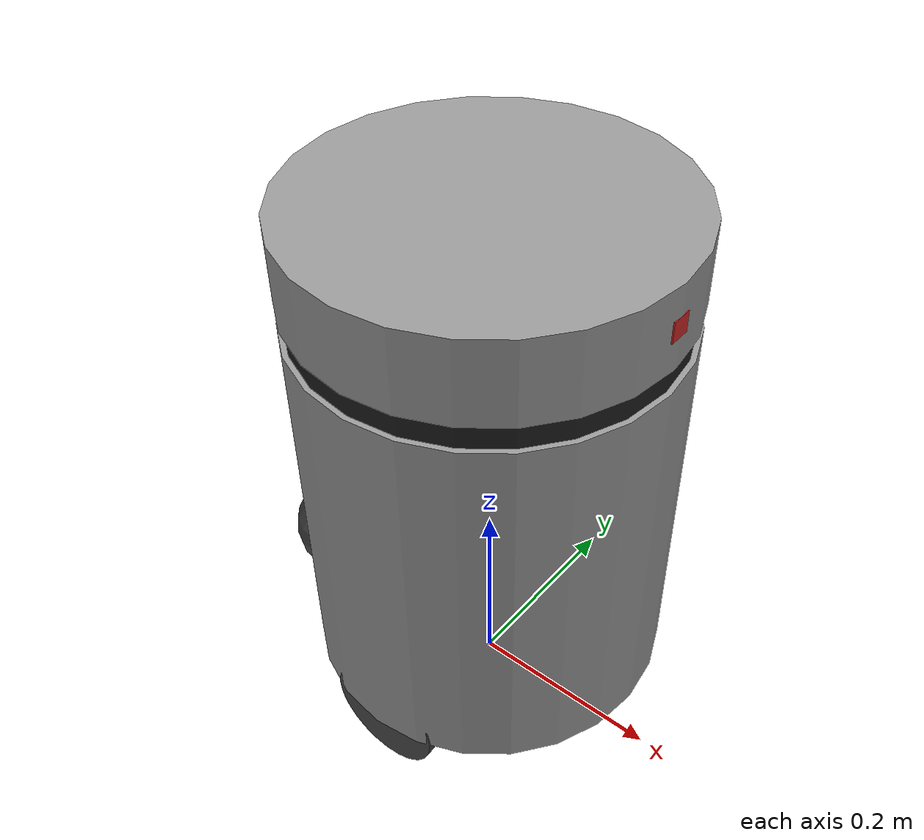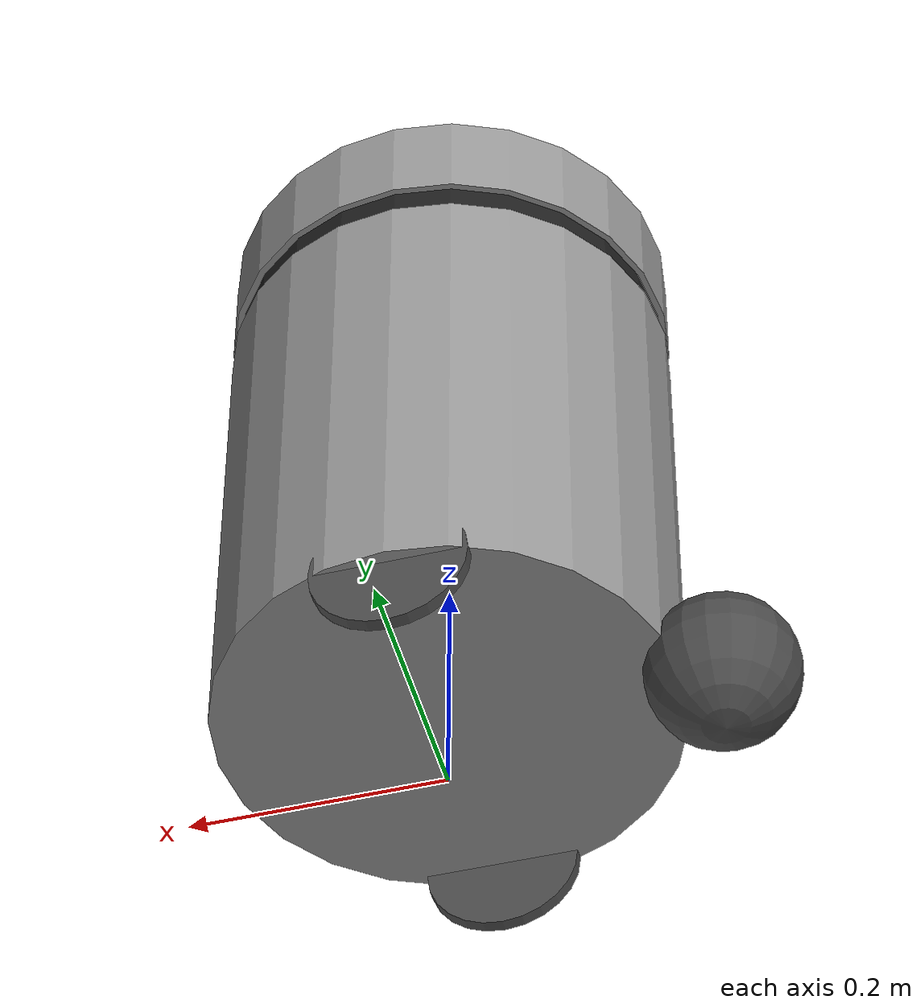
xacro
<?xml version="1.0"?>
<robot name="ocare" xmlns:xacro="http://www.ros.org/wiki/xacro">

  <!-- Included URDF/XACRO Files -->
  <xacro:include filename="$(find labrob_description)/urdf/materials.urdf.xacro" />
  <xacro:include filename="$(find labrob_description)/urdf/ocare_wheel.urdf.xacro" />

  <!-- PROPERTY LIST -->
  <!--All units in m-kg-s-radians unit system -->
  <property name="M_PI" value="3.1415926535897931" />

  <!-- Main Body-base -->
  <property name="base_height" value="0.40" />
  <property name="base_radius" value="0.18" />
  <property name="base_mass" value="4" /> <!-- in kg-->

  <!-- Main Body-base -->
  <property name="neck_link_height" value="0.025" />
  <property name="neck_link_radius" value="0.175" />
  <property name="neck_link_mass" value="0.1" /> <!-- in kg-->

  <!-- Main Body-base -->
  <property name="head_link_height" value="0.08" />
  <property name="head_link_radius" value="0.18" />
  <property name="head_link_mass" value="0.1" /> <!-- in kg-->

  <!--Left Arm-base-->
  <property name="left_arm_base_mass" value="0.20" />
  <property name="left_arm_base_x_offset" value="0.0" />
  <property name="left_arm_base_y_offset" value="0.0" />
  <property name="left_arm_base_z_offset" value="0.1" />
  <property name="left_arm_base_x_size" value="0.05" />
  <property name="left_arm_base_y_size" value="0.02" />
  <property name="left_arm_base_z_size" value="0.10" />
  <property name="base_x_origin_to_left_arm_base" value="0.0" />
  <property name="base_y_origin_to_left_arm_base" value="0.05" />
  <property name="base_z_origin_to_left_arm_base" value="0.0" />

    <!--Left Arm1-base-->
  <property name="left_arm_1_link_mass" value="0.01" />
  <property name="left_arm_1_link_x_offset" value="0.0" />
  <property name="left_arm_1_link_y_offset" value="0.176" />
  <property name="left_arm_1_link_z_offset" value="0.0" />
  <property name="left_arm_1_link_x_size" value="0.05" />
  <property name="left_arm_1_link_y_size" value="0.176" />
  <property name="left_arm_1_link_z_size" value="0.02" />

    <!--Left Arm2-base-->
  <property name="left_arm_2_link_mass" value="0.01" />
  <property name="left_arm_2_link_x_offset" value="-0.078" />
  <property name="left_arm_2_link_y_offset" value="0.03" />
  <property name="left_arm_2_link_z_offset" value="-0.01" />
  <property name="left_arm_2_link_x_size" value="0.078" />
  <property name="left_arm_2_link_y_size" value="0.06" />
  <property name="left_arm_2_link_z_size" value="0.02" />

    <!--Right Arm-base-->
  <property name="right_arm_base_mass" value="0.20" />
  <property name="right_arm_base_x_offset" value="0.0" />
  <property name="right_arm_base_y_offset" value="0.0" />
  <property name="right_arm_base_z_offset" value="-0.1" />
  <property name="right_arm_base_x_size" value="0.05" />
  <property name="right_arm_base_y_size" value="0.02" />
  <property name="right_arm_base_z_size" value="0.10" />
  <property name="base_x_origin_to_right_arm_base" value="0.0" />
  <property name="base_y_origin_to_right_arm_base" value="-0.05" />
  <property name="base_z_origin_to_right_arm_base" value="0.0" />

    <!--Right Arm1-base-->
  <property name="right_arm_1_link_mass" value="0.01" />
  <property name="right_arm_1_link_x_offset" value="0.0" />
  <property name="right_arm_1_link_y_offset" value="0.176" />
  <property name="right_arm_1_link_z_offset" value="0.0" />
  <property name="right_arm_1_link_x_size" value="0.05" />
  <property name="right_arm_1_link_y_size" value="0.176" />
  <property name="right_arm_1_link_z_size" value="0.02" />

    <!--Right Arm2-base-->
  <property name="right_arm_2_link_mass" value="0.01" />
  <property name="right_arm_2_link_x_offset" value="-0.078" />
  <property name="right_arm_2_link_y_offset" value="0.03" />
  <property name="right_arm_2_link_z_offset" value="0.01" />
  <property name="right_arm_2_link_x_size" value="0.078" />
  <property name="right_arm_2_link_y_size" value="0.06" />
  <property name="right_arm_2_link_z_size" value="0.02" />

	<!--Camera Link-->
  <property name="camera_link_x_size" value="0.02" />
  <property name="camera_link_y_size" value="0.02" />
   <property name="camera_link_z_size" value="0.02" />

  <!--Inertial macros for the box and cylinder. Units are kg*m^2-->
  <macro name="box_inertia" params="m x y z">
    <inertia  ixx="${m*(y*y+z*z)/12}" ixy = "0" ixz = "0"
              iyy="${m*(x*x+z*z)/12}" iyz = "0"
              izz="${m*(x*x+z*z)/12}" />
  </macro>

  <!-- BASE-FOOTPRINT -->
  <!-- base_footprint is a fictitious link(frame) that is on the ground right below base_link origin -->
  <link name="base_footprint">
    <inertial>
      <mass value="0.0001" />
      <origin xyz="0 0 0" />
      <inertia ixx="0.0001" ixy="0.0" ixz="0.0"
          iyy="0.0001" iyz="0.0"
          izz="0.0001" />
    </inertial>
    <visual>
        <origin xyz="0 0 0" rpy="0 0 0" />
        <geometry>
            <box size="0.001 0.001 0.001" />
        </geometry>
    </visual>
  </link>

  <joint name="base_footprint_joint" type="fixed">
	<origin xyz="0 0 ${wheel_radius + base_z_origin_to_wheel_origin}" rpy="0 0 0" />
    <parent link="base_footprint"/>
    <child link="base_link" />
  </joint>

  <gazebo reference="base_footprint">
    <turnGravityOff>false</turnGravityOff>
  </gazebo>

  <!-- BASE-LINK -->
  <!--Actual body/chassis of the robot-->
  <link name="base_link">
    <inertial>
      <mass value="${base_mass}" />
      <origin xyz="0 0 0" />
      <!--The 3x3 rotational inertia matrix. -->
      <cylinder_inertia  m="${base_mass}" r="${base_radius}" h="${base_height}" />
    </inertial>

    <visual name="visual">
      <origin xyz="0 0 -0.14" rpy="0 0 0 " />
      <geometry>
        <cylinder length="${base_height}" radius="${base_radius}" />
      </geometry>
      <material name="Gray" />
    </visual>

    <collision>
      <origin xyz="0 0 -0.14" rpy="0 0 0 " />
      <geometry>
        <cylinder length="${base_height}" radius="${base_radius}" />
      </geometry>
    </collision>
  </link>
  <gazebo reference="base_link">
    <material>Gazebo/Yellow</material>
    <turnGravityOff>false</turnGravityOff>
  </gazebo>

   <!-- NECK-LINK -->
  <!--Actual body/chassis of the robot-->
  <link name="neck_link">
    <inertial>
      <mass value="${neck_link_mass}" />
      <origin xyz="0 0 0" />
      <!--The 3x3 rotational inertia matrix. -->
      <cylinder_inertia  m="${neck_link_mass}" r="${neck_link_radius}" h="${neck_link_height}" />
    </inertial>

    <visual name="visual">
      <origin xyz="0 0 0" rpy="0 0 0 " />
      <geometry>
        <cylinder length="${neck_link_height}" radius="${neck_link_radius}" />
      </geometry>
      <material name="Black" />
    </visual>

  </link>
  <gazebo reference="neck_link">
    <material>Gazebo/Black</material>
    <turnGravityOff>false</turnGravityOff>
  </gazebo>
  <joint name="neck_link_joint" type="fixed">
	<parent link="base_link"/>
	<child link="neck_link"/>
	<origin xyz="0 0 0.0725" rpy="0 0 0" />
  </joint>

  <!-- HEAD-LINK -->
  <!--Actual body/chassis of the robot-->
  <link name="head_link">
    <inertial>
      <mass value="${head_link_mass}" />
      <origin xyz="0 0 0" />
      <!--The 3x3 rotational inertia matrix. -->
      <cylinder_inertia  m="${head_link_mass}" r="${head_link_radius}" h="${head_link_height}" />
    </inertial>

    <visual name="visual">
      <origin xyz="0 0 0" rpy="0 0 0 " />
      <geometry>
        <cylinder length="${head_link_height}" radius="${head_link_radius}" />
      </geometry>
      <material name="Gray" />
    </visual>

    <collision>
      <origin xyz="0 0 0" rpy="0 0 0 " />
      <geometry>
        <cylinder length="${head_link_height}" radius="${head_link_radius}" />
      </geometry>
    </collision>
  </link>
  <gazebo reference="head_link">
    <material>Gazebo/Gray</material>
    <turnGravityOff>false</turnGravityOff>
  </gazebo>
  <joint name="head_link_joint" type="fixed">
	<parent link="neck_link"/>
	<child link="head_link"/>
	<origin xyz="0 0 0.0525" rpy="0 0 0" />
  </joint>

  <!--LEFT-ARM-BASE-->
  <link name="left_arm_base_link">
    <inertial>
      <mass value="${left_arm_base_mass}" />
      <origin
					xyz=
				"${left_arm_base_x_offset} ${left_arm_base_y_offset} ${left_arm_base_z_offset-left_arm_base_z_size/2}"
					rpy=
				"0 0 0 " />
      <!--The 3x3 rotational inertia matrix. -->
       <box_inertia m="${left_arm_base_mass}" x="${left_arm_base_x_size}" y="${left_arm_base_y_size}" z="${left_arm_base_z_size}" />
    </inertial>

    <visual name="visual">
      <origin
					xyz=
				"${left_arm_base_x_offset} ${left_arm_base_y_offset} ${left_arm_base_z_offset-left_arm_base_z_size/2}"
					rpy=
				"0 0 0 " />
      <geometry>
        <box size="${left_arm_base_x_size} ${left_arm_base_y_size} ${left_arm_base_z_size}" />
      </geometry>

      <material name="Green" />
    </visual>

	<collision>
		<origin
					xyz=
				"${left_arm_base_x_offset-left_arm_base_x_size/2} ${left_arm_base_y_offset-left_arm_base_y_size/2} ${left_arm_base_z_offset-left_arm_base_z_size/2}"
					rpy=
				"0 0 0 " />
      <geometry>
        <box size="${left_arm_base_x_size} ${left_arm_base_y_size} ${left_arm_base_z_size}" />
      </geometry>
	</collision>

  </link>
  <gazebo reference="left_arm_base_link">
    <material>Gazebo/Grey</material>
    <turnGravityOff>false</turnGravityOff>
  </gazebo>
  <joint name="left_arm_base_link_joint" type="prismatic">
	<parent link="base_link"/>
	<child link="left_arm_base_link"/>
	<origin xyz="${base_x_origin_to_left_arm_base} ${base_y_origin_to_left_arm_base} ${base_z_origin_to_left_arm_base}" rpy="${-M_PI/2} 0 0" />
	<axis xyz="0 0 1"/>
	<limit effort="100" velocity="100" lower="0" upper="0.15" />
	<joint_properties damping="0.0" friction="0.0"/>
  </joint>
  <transmission name="left_arm_base_link_tran">
	<type>transmission_interface/SimpleTransmission</type>
	<joint name="left_arm_base_link_joint" >
		<hardwareInterface>PositionJointInterface</hardwareInterface>
	</joint>
	<actuator name="left_arm_base_link_joint_actu">
		<hardwareInterface>PositionJointInterface</hardwareInterface>
		<mechanicalReduction>1</mechanicalReduction>
	</actuator>
  </transmission>

   <!--LEFT-ARM1-LINK-->
  <link name="left_arm_1_link">
    <inertial>
      <mass value="${left_arm_1_link_mass}" />
      <origin
					xyz=
				"${left_arm_1_link_x_offset} ${left_arm_1_link_y_offset-left_arm_1_link_y_size/2} ${left_arm_1_link_z_offset}"
					rpy=
				"0 0 0 " />
      <!--The 3x3 rotational inertia matrix. -->
       <box_inertia m="${left_arm_1_link_mass}" x="${left_arm_1_link_x_size}" y="${left_arm_1_link_y_size}" z="${left_arm_1_link_z_size}" />
    </inertial>

    <visual name="visual">
      <origin
					xyz=
				"${left_arm_1_link_x_offset} ${left_arm_1_link_y_offset-left_arm_1_link_y_size/2} ${left_arm_1_link_z_offset}"
					rpy=
				"0 0 0 " />
      <geometry>
        <box size="${left_arm_1_link_x_size} ${left_arm_1_link_y_size} ${left_arm_1_link_z_size}" />
      </geometry>

      <material name="Green" />
    </visual>

	<collision>
      <origin
					xyz=
				"${left_arm_1_link_x_offset} ${left_arm_1_link_y_offset-left_arm_1_link_y_size/2} ${left_arm_1_link_z_offset}"
					rpy=
				"0 0 0 " />
      <geometry>
        <box size="${left_arm_1_link_x_size} ${left_arm_1_link_y_size} ${left_arm_1_link_z_size}" />
      </geometry>
	</collision>

  </link>
  <gazebo reference="left_arm_1_link">
    <material>Gazebo/Grey</material>
    <turnGravityOff>false</turnGravityOff>
  </gazebo>
  <joint name="left_arm_1_link_joint" type="revolute">
	<parent link="left_arm_base_link"/>
	<child link="left_arm_1_link"/>
	<origin xyz="${left_arm_base_x_offset} ${left_arm_base_y_offset} ${left_arm_base_z_offset}" rpy="0 0 0" />
	<axis xyz="0 0 1"/>
	<limit effort="5" velocity="1" lower="${-M_PI}" upper="0" />
	<joint_properties damping="1.0" friction="0.0"/>
  </joint>
  <transmission name="left_arm_1_link_tran">
  	<type>transmission_interface/SimpleTransmission</type>
	<joint name="left_arm_1_link_joint" >
		<hardwareInterface>PositionJointInterface</hardwareInterface>
	</joint>
	<actuator name="left_arm_1_link_joint_actu">
		<hardwareInterface>PositionJointInterface</hardwareInterface>
		<mechanicalReduction>1</mechanicalReduction>
	</actuator>
  </transmission>

     <!--LEFT-ARM2-LINK-->
  <link name="left_arm_2_link">
    <inertial>
      <mass value="${left_arm_2_link_mass}" />
      <origin
					xyz=
				"${left_arm_2_link_x_offset} ${left_arm_2_link_y_offset-left_arm_2_link_x_offset/2} ${left_arm_2_link_z_offset}"
					rpy=
				"0 0 0 " />
      <!--The 3x3 rotational inertia matrix. -->
       <box_inertia m="${left_arm_2_link_mass}" x="${left_arm_2_link_x_size}" y="${left_arm_2_link_y_size}" z="${left_arm_2_link_z_size}" />
    </inertial>

    <visual name="visual">
      <origin
					xyz=
				"${left_arm_2_link_x_offset+left_arm_2_link_x_size/2} ${left_arm_2_link_y_offset} ${left_arm_2_link_z_offset}"
					rpy=
				"0 0 0 " />
      <geometry>
        <box size="${left_arm_2_link_x_size} ${left_arm_2_link_y_size} ${left_arm_2_link_z_size}" />
      </geometry>

      <material name="Red" />
    </visual>

	<collision>
      <origin
					xyz=
				"${left_arm_2_link_x_offset+left_arm_2_link_x_size/2} ${left_arm_2_link_y_offset} ${left_arm_2_link_z_offset}"
					rpy=
				"0 0 0 " />
      <geometry>
        <box size="${left_arm_2_link_x_size} ${left_arm_2_link_y_size} ${left_arm_2_link_z_size}" />
      </geometry>
	</collision>

  </link>
  <gazebo reference="left_arm_2_link">
    <material>Gazebo/Grey</material>
    <turnGravityOff>false</turnGravityOff>
  </gazebo>
  <joint name="left_arm_2_link_joint" type="revolute">
	<parent link="left_arm_1_link"/>
	<child link="left_arm_2_link"/>
	<origin xyz="${left_arm_1_link_x_offset} ${left_arm_1_link_y_offset} ${left_arm_1_link_z_offset}" rpy="0 0 ${M_PI/2}" />
	<axis xyz="0 0 1"/>
	<limit effort="5" velocity="1" lower="0" upper="${3*M_PI/2}" />
	<joint_properties damping="1.0" friction="0.0"/>
  </joint>
  <transmission name="left_arm_2_link_tran">
  	<type>transmission_interface/SimpleTransmission</type>
	<joint name="left_arm_2_link_joint" >
		<hardwareInterface>PositionJointInterface</hardwareInterface>
	</joint>
	<actuator name="left_arm_2_link_joint_actu">
		<hardwareInterface>PositionJointInterface</hardwareInterface>
		<mechanicalReduction>1</mechanicalReduction>
	</actuator>
  </transmission>

  <!--Right-ARM-BASE-->
  <link name="right_arm_base_link">
    <inertial>
      <mass value="${right_arm_base_mass}" />
      <origin
					xyz=
				"${right_arm_base_x_offset} ${right_arm_base_y_offset} ${right_arm_base_z_offset-right_arm_base_z_size/2}"
					rpy=
				"0 0 0 " />
      <!--The 3x3 rotational inertia matrix. -->
       <box_inertia m="${right_arm_base_mass}" x="${right_arm_base_x_size}" y="${right_arm_base_y_size}" z="${right_arm_base_z_size}" />
    </inertial>

    <visual name="visual">
      <origin
					xyz=
				"${right_arm_base_x_offset} ${right_arm_base_y_offset} ${right_arm_base_z_offset+right_arm_base_z_size/2}"
					rpy=
				"0 0 0 " />
      <geometry>
        <box size="${right_arm_base_x_size} ${right_arm_base_y_size} ${right_arm_base_z_size}" />
      </geometry>

      <material name="Green" />
    </visual>

	<collision>
		<origin
					xyz=
				"${right_arm_base_x_offset-right_arm_base_x_size/2} ${right_arm_base_y_offset-right_arm_base_y_size/2} ${right_arm_base_z_offset-right_arm_base_z_size/2}"
					rpy=
				"0 0 0 " />
      <geometry>
        <box size="${right_arm_base_x_size} ${right_arm_base_y_size} ${right_arm_base_z_size}" />
      </geometry>
	</collision>

  </link>
  <gazebo reference="right_arm_base_link">
    <material>Gazebo/Grey</material>
    <turnGravityOff>false</turnGravityOff>
  </gazebo>
  <joint name="right_arm_base_link_joint" type="prismatic">
	<parent link="base_link"/>
	<child link="right_arm_base_link"/>
	<origin xyz="${base_x_origin_to_right_arm_base} ${base_y_origin_to_right_arm_base} ${base_z_origin_to_right_arm_base}" rpy="${-M_PI/2} 0 0" />
	<axis xyz="0 0 1"/>
	<limit effort="100" velocity="100" lower="0" upper="0.15" />
	<joint_properties damping="0.0" friction="0.0"/>
  </joint>
  <transmission name="right_arm_base_link_tran">
	<type>transmission_interface/SimpleTransmission</type>
	<joint name="right_arm_base_link_joint" >
		<hardwareInterface>PositionJointInterface</hardwareInterface>
	</joint>
	<actuator name="right_arm_base_link_joint_actu">
		<hardwareInterface>PositionJointInterface</hardwareInterface>
		<mechanicalReduction>1</mechanicalReduction>
	</actuator>
  </transmission>

   <!--RIGHT-ARM1-LINK-->
  <link name="right_arm_1_link">
    <inertial>
      <mass value="${right_arm_1_link_mass}" />
      <origin
					xyz=
				"${right_arm_1_link_x_offset} ${right_arm_1_link_y_offset-right_arm_1_link_y_size/2} ${right_arm_1_link_z_offset}"
					rpy=
				"0 0 0 " />
      <!--The 3x3 rotational inertia matrix. -->
       <box_inertia m="${right_arm_1_link_mass}" x="${right_arm_1_link_x_size}" y="${right_arm_1_link_y_size}" z="${right_arm_1_link_z_size}" />
    </inertial>

    <visual name="visual">
      <origin
					xyz=
				"${right_arm_1_link_x_offset} ${right_arm_1_link_y_offset-right_arm_1_link_y_size/2} ${right_arm_1_link_z_offset}"
					rpy=
				"0 0 0 " />
      <geometry>
        <box size="${right_arm_1_link_x_size} ${right_arm_1_link_y_size} ${right_arm_1_link_z_size}" />
      </geometry>

      <material name="Green" />
    </visual>

	<collision>
      <origin
					xyz=
				"${right_arm_1_link_x_offset} ${right_arm_1_link_y_offset-right_arm_1_link_y_size/2} ${right_arm_1_link_z_offset}"
					rpy=
				"0 0 0 " />
      <geometry>
        <box size="${right_arm_1_link_x_size} ${right_arm_1_link_y_size} ${right_arm_1_link_z_size}" />
      </geometry>
	</collision>

  </link>
  <gazebo reference="right_arm_1_link">
    <material>Gazebo/Grey</material>
    <turnGravityOff>false</turnGravityOff>
  </gazebo>
  <joint name="right_arm_1_link_joint" type="revolute">
	<parent link="right_arm_base_link"/>
	<child link="right_arm_1_link"/>
	<origin xyz="${right_arm_base_x_offset} ${right_arm_base_y_offset} ${right_arm_base_z_offset}" rpy="0 0 0" />
	<axis xyz="0 0 1"/>
	<limit effort="5" velocity="1" lower="${-M_PI}" upper="0" />
	<joint_properties damping="1.0" friction="0.0"/>
  </joint>
  <transmission name="right_arm_1_link_tran">
  	<type>transmission_interface/SimpleTransmission</type>
	<joint name="right_arm_1_link_joint" >
		<hardwareInterface>PositionJointInterface</hardwareInterface>
	</joint>
	<actuator name="right_arm_1_link_joint_actu">
		<hardwareInterface>PositionJointInterface</hardwareInterface>
		<mechanicalReduction>1</mechanicalReduction>
	</actuator>
  </transmission>

     <!--RIGHT-ARM2-LINK-->
  <link name="right_arm_2_link">
    <inertial>
      <mass value="${right_arm_2_link_mass}" />
      <origin
					xyz=
				"${right_arm_2_link_x_offset} ${right_arm_2_link_y_offset-right_arm_2_link_x_offset/2} ${right_arm_2_link_z_offset}"
					rpy=
				"0 0 0 " />
      <!--The 3x3 rotational inertia matrix. -->
       <box_inertia m="${right_arm_2_link_mass}" x="${right_arm_2_link_x_size}" y="${right_arm_2_link_y_size}" z="${right_arm_2_link_z_size}" />
    </inertial>

    <visual name="visual">
      <origin
					xyz=
				"${right_arm_2_link_x_offset+right_arm_2_link_x_size/2} ${right_arm_2_link_y_offset} ${right_arm_2_link_z_offset}"
					rpy=
				"0 0 0 " />
      <geometry>
        <box size="${right_arm_2_link_x_size} ${right_arm_2_link_y_size} ${right_arm_2_link_z_size}" />
      </geometry>

      <material name="Red" />
    </visual>

	<collision>
      <origin
					xyz=
				"${right_arm_2_link_x_offset+right_arm_2_link_x_size/2} ${right_arm_2_link_y_offset} ${right_arm_2_link_z_offset}"
					rpy=
				"0 0 0 " />
      <geometry>
        <box size="${right_arm_2_link_x_size} ${right_arm_2_link_y_size} ${right_arm_2_link_z_size}" />
      </geometry>
	</collision>

  </link>
  <gazebo reference="right_arm_2_link">
    <material>Gazebo/Grey</material>
    <turnGravityOff>false</turnGravityOff>
  </gazebo>
  <joint name="right_arm_2_link_joint" type="revolute">
	<parent link="right_arm_1_link"/>
	<child link="right_arm_2_link"/>
	<origin xyz="${right_arm_1_link_x_offset} ${right_arm_1_link_y_offset} ${right_arm_1_link_z_offset}" rpy="0 0 ${M_PI/2}" />
	<axis xyz="0 0 1"/>
	<limit effort="5" velocity="1" lower="0" upper="${3*M_PI/2}" />
	<joint_properties damping="1.0" friction="0.0"/>
  </joint>
  <transmission name="right_arm_2_link_tran">
  	<type>transmission_interface/SimpleTransmission</type>
	<joint name="right_arm_2_link_joint" >
		<hardwareInterface>PositionJointInterface</hardwareInterface>
	</joint>
	<actuator name="right_arm_2_link_joint_actu">
		<hardwareInterface>PositionJointInterface</hardwareInterface>
		<mechanicalReduction>1</mechanicalReduction>
	</actuator>
  </transmission>

  <!-- WHEELs -->
  <wheel lr="right" parent="base_link" translateX="0" translateY="-1" translateZ="-1" flipY="-1"/>
  <wheel lr="left" parent="base_link" translateX="0" translateY="1" translateZ="-1" flipY="-1"/>

  <link name="base_idler_wheel">
    <visual>
      <origin rpy="0 0 0" xyz="0 0 0"/>
          <geometry>
            <sphere radius=".06"/>
          </geometry>
      <material name="DarkGray"/>
    </visual>
    <collision>
      <origin rpy="0 0 0" xyz="0 0 0"/>
          <geometry>
            <sphere radius=".06"/>
          </geometry>
    </collision>
    <inertial>
      <mass value="3"/>
      <origin xyz="0 0 0"/>
      <inertia ixx="0.00227083333333" ixy="0" ixz="0" iyy="0.00227083333333" iyz="0" izz="0.00227083333333"/>
    </inertial>
  </link>
  <gazebo reference="base_idler_wheel">
    <mu1 value="0.0"/>
    <mu2 value="0.0"/>
    <kp value="10000000.0"/>
    <kd value="1.0"/>
    <fdir1 value="1 0 0"/>
    <material>Gazebo/Gray</material>
    <turnGravityOff>false</turnGravityOff>
  </gazebo>
  <joint name="base_idler_wheel_joint" type="continuous">
    <parent link="base_link"/>
    <child link="base_idler_wheel"/>
    <origin rpy="0 0 0" xyz="-0.21 0 -0.34"/>
    <axis rpy="0 0 0" xyz="0 1 0"/>
    <limit effort="100" velocity="100"/>
    <joint_properties damping="0.0" friction="0.0"/>
  </joint>
  <transmission name="base_idler_wheel_tran">
  	<type>transmission_interface/SimpleTransmission</type>
	<joint name="base_idler_wheel_joint" >
		<hardwareInterface>EffortJointInterface</hardwareInterface>
	</joint>
	<actuator name="base_idler_wheel_joint_actu">
		<hardwareInterface>EffortJointInterface</hardwareInterface>
		<mechanicalReduction>1</mechanicalReduction>
	</actuator>
  </transmission>

  <!-- Camera -->
  <link name="camera_link">
    <collision>
      <origin xyz="0 0 0" rpy="0 0 0"/>
      <geometry>
    <box size="${camera_link_x_size} ${camera_link_y_size} ${camera_link_z_size}"/>
      </geometry>
    </collision>

    <visual>
      <origin xyz="0 0 0" rpy="0 0 0"/>
      <geometry>
    <box size="${camera_link_x_size} ${camera_link_y_size} ${camera_link_z_size}"/>
      </geometry>
      <material name="red"/>
    </visual>

    <inertial>
      <mass value="1e-5" />
      <origin xyz="0 0 0" rpy="0 0 0"/>
      <inertia ixx="1e-6" ixy="0" ixz="0" iyy="1e-6" iyz="0" izz="1e-6" />
    </inertial>
  </link>
  <joint name="camera_joint" type="fixed">
    <axis xyz="0 1 0" />
    <origin xyz="0.17 0 0" rpy="0 0 0"/>
    <parent link="head_link"/>
    <child link="camera_link"/>
  </joint>
  <gazebo reference="camera_link">
    <sensor type="camera" name="camera1">
      <update_rate>30.0</update_rate>
      <camera name="head">
        <horizontal_fov>1.3962634</horizontal_fov>
        <image>
          <width>640</width>
          <height>480</height>
          <format>R8G8B8</format>
        </image>
        <clip>
          <near>0.02</near>
          <far>300</far>
        </clip>
        <noise>
          <type>gaussian</type>
          <!-- Noise is sampled independently per pixel on each frame.
               That pixel's noise value is added to each of its color
               channels, which at that point lie in the range [0,1]. -->
          <mean>0.0</mean>
          <stddev>0.007</stddev>
        </noise>
      </camera>
      <plugin name="camera_controller" filename="libgazebo_ros_camera.so">
        <alwaysOn>true</alwaysOn>
        <updateRate>0.0</updateRate>
        <cameraName>ocare/camera1</cameraName>
        <imageTopicName>image_raw</imageTopicName>
        <cameraInfoTopicName>camera_info</cameraInfoTopicName>
        <frameName>camera_link</frameName>
        <hackBaseline>0.07</hackBaseline>
        <distortionK1>0.0</distortionK1>
        <distortionK2>0.0</distortionK2>
        <distortionK3>0.0</distortionK3>
        <distortionT1>0.0</distortionT1>
        <distortionT2>0.0</distortionT2>
      </plugin>
    </sensor>
  </gazebo>

  <!-- Hokuyo Laser -->
  <link name="laser">
    <collision>
      <origin xyz="0 0 0" rpy="0 0 0"/>
      <geometry>
		<box size="0.04 0.04 0.04"/>
      </geometry>
    </collision>

    <visual>
      <origin xyz="0 0 0" rpy="0 0 0"/>
      <geometry>
		<box size="0.04 0.04 0.04"/>
      </geometry>
    </visual>

    <inertial>
      <mass value="1e-5" />
      <origin xyz="0 0 0" rpy="0 0 0"/>
      <inertia ixx="1e-6" ixy="0" ixz="0" iyy="1e-6" iyz="0" izz="1e-6" />
    </inertial>
  </link>
  <joint name="laser_joint" type="fixed">
    <axis xyz="0 1 0" />
    <origin xyz="0 0 0" rpy="0 0 0"/>
    <parent link="neck_link"/>
    <child link="laser"/>
  </joint>
  <gazebo reference="laser">
    <sensor type="ray" name="head_hokuyo_sensor">
      <pose>0 0 0 0 0 0</pose>
      <visualize>true</visualize>
      <update_rate>20</update_rate>
      <ray>
        <scan>
          <horizontal>
            <samples>720</samples>
            <resolution>0.5</resolution>
            <min_angle>-3.1415925</min_angle>
            <max_angle>3.1415925</max_angle>
          </horizontal>
        </scan>
        <range>
          <min>0.20</min>
          <max>5.6</max>
          <resolution>0.03</resolution>
        </range>
        <noise>
          <type>gaussian</type>
          <mean>0.0</mean>
          <stddev>0.01</stddev>
        </noise>
      </ray>
      <plugin name="gazebo_ros_head_hokuyo_controller" filename="libgazebo_ros_laser.so">
        <topicName>/ocare/laser/scan</topicName>
        <frameName>laser</frameName>
      </plugin>
    </sensor>
  </gazebo>

  <link name="imu_link">
    <inertial>
        <mass value="0.01" />
        <origin xyz="0 0 -0.1" />
        <inertia ixx="0.001" ixy="0.0" ixz="0.0"
                 iyy="0.001" iyz="0.0"
                 izz="0.001" />
    </inertial>
        <visual>
        <origin xyz="0 0 -0.1" rpy="0 0 0" />
        <geometry>
            <box size = "0.1 0.1 0.1"/>
                </geometry>
        </visual>
    <collision>
        <origin xyz="0 0 -0.1" rpy="0 0 0" />
        <geometry>
            <box size = "0.01 0.01 0.01"/>
        </geometry>
    </collision>
    </link>
  <joint name="imu_joint" type="fixed">
    <axis xyz="0 0 0"/>
    <origin xyz="0.05 0 0.15" rpy="0 0 0" />
    <parent link="base_link"/>
    <child link="imu_link" />
  </joint>
  <gazebo>
    <plugin name="imu_plugin" filename="libgazebo_ros_imu.so">
        <alwaysOn>true</alwaysOn>
        <bodyName>imu_link</bodyName>
        <topicName>imu_data</topicName>
        <serviceName>imu_service</serviceName>
        <gaussianNoise>0.0</gaussianNoise>
        <updateRate>60.0</updateRate>
    </plugin>
  </gazebo>

<gazebo>
  <plugin name="differential_drive_controller" filename="libgazebo_ros_diff_drive.so">
    <alwaysOn>true</alwaysOn>
    <updateRate>50</updateRate>
    <leftJoint>base_left_wheel_joint</leftJoint>
    <rightJoint>base_right_wheel_joint</rightJoint>
    <wheelSeparation>0.33</wheelSeparation>
    <wheelDiameter>0.125</wheelDiameter>
    <torque>10</torque>
    <commandTopic>cmd_vel</commandTopic>
    <odometryTopic>odom_</odometryTopic>
    <odometryFrame>odom_</odometryFrame>
    <robotBaseFrame>base_footprint</robotBaseFrame>
    <publishWheelTF>false</publishWheelTF>
    <publishWheelJointState>false</publishWheelJointState>
  </plugin>

  <plugin name="gazebo_ros_control" filename="libgazebo_ros_control.so">
    <robotNamespace>/ocare</robotNamespace>
  </plugin>
</gazebo>

</robot>

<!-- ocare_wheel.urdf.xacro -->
<robot name="wheel" xmlns:xacro="http://www.ros.org/wiki/xacro">

  <!-- Wheels -->
  <property name="wheel_radius" value="0.06" />
  <property name="wheel_height" value="0.01" />
  <property name="wheel_mass" value="2.5" /> <!-- in kg-->

  <property name="base_x_origin_to_wheel_origin" value="0" />
  <property name="base_y_origin_to_wheel_origin" value="0.165" />
  <property name="base_z_origin_to_wheel_origin" value="0.34" />

   <macro name="cylinder_inertia" params="m r h">
    <inertia  ixx="${m*(3*r*r+h*h)/12}" ixy = "0" ixz = "0"
              iyy="${m*(3*r*r+h*h)/12}" iyz = "0"
              izz="${m*r*r/2}" />
  </macro>

  <xacro:macro name="wheel" params="lr parent translateX translateY translateZ flipY"> <!--fb : front, back ; lr: left, right -->
    <link name="base_${lr}_wheel">

      <visual>
        <origin xyz="0 0 0" rpy="${flipY*M_PI/2} 0 0" />
        <geometry>
          <cylinder length="${wheel_height}" radius="${wheel_radius}" />
        </geometry>
        <material name="DarkGray" />
      </visual>

      <collision>
        <origin xyz="0 0 0" rpy="${flipY*M_PI/2} 0 0" />
        <geometry>
          <cylinder length="${wheel_height}" radius="${wheel_radius}" />
        </geometry>
      </collision>

      <inertial>
        <mass value="${wheel_mass}" />
        <origin xyz="0 0 0" />
        <cylinder_inertia  m="${wheel_mass}" r="${wheel_radius}" h="${wheel_height}" />
      </inertial>

    </link>

     <gazebo reference="base_${lr}_wheel">
      <mu1 value="1.0"/>
      <mu2 value="1.0"/>
      <kp  value="10000000.0" />
      <kd  value="1.0" />
      <fdir1 value="1 0 0"/>
      <material>Gazebo/Grey</material>
      <turnGravityOff>false</turnGravityOff>
    </gazebo>

    <joint name="base_${lr}_wheel_joint" type="continuous">
      <parent link="${parent}"/>
      <child link="base_${lr}_wheel"/>
      <origin xyz="${translateX * base_x_origin_to_wheel_origin} ${translateY * base_y_origin_to_wheel_origin} ${translateZ * base_z_origin_to_wheel_origin}" rpy="0 0 0" />
      <axis xyz="0 1 0" rpy="0 0 0" />
      <limit effort="100" velocity="100"/>
      <joint_properties damping="0.0" friction="0.0"/>
    </joint>

        <!-- Transmission is important to link the joints and the controller -->
    <transmission name="base_${lr}_wheel_joint_trans">
      <type>transmission_interface/SimpleTransmission</type>
      <joint name="base_${lr}_wheel_joint" >
		  <hardwareInterface>EffortJointInterface</hardwareInterface>
      </joint>
      <actuator name="base_${lr}_wheel_joint_motor">
        <hardwareInterface>EffortJointInterface</hardwareInterface>
        <mechanicalReduction>1</mechanicalReduction>
      </actuator>
    </transmission>

  </xacro:macro>
</robot>
